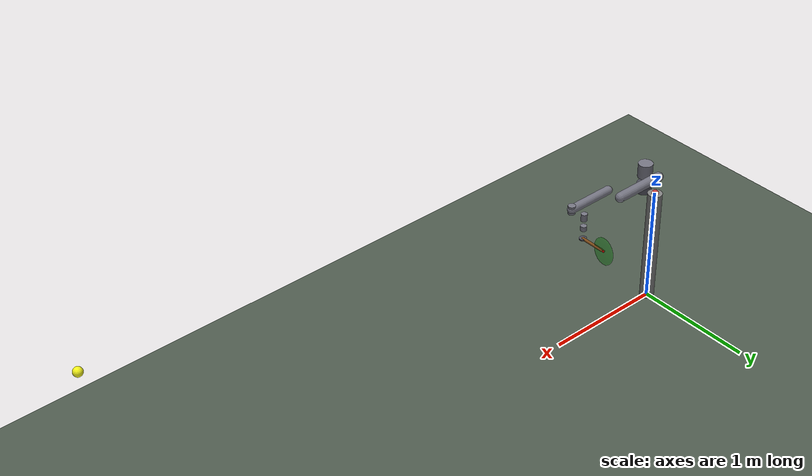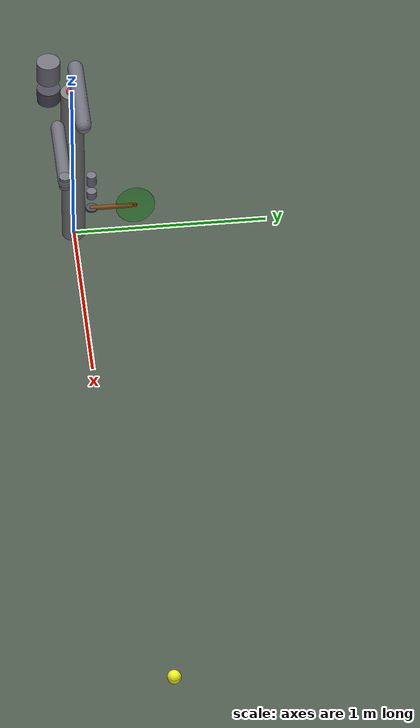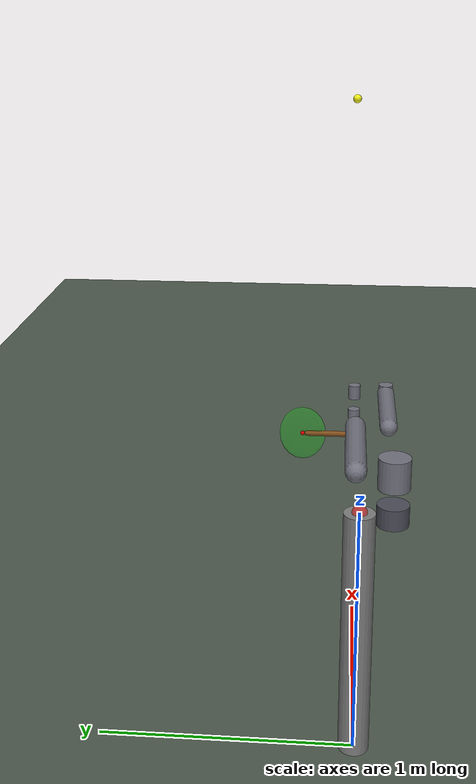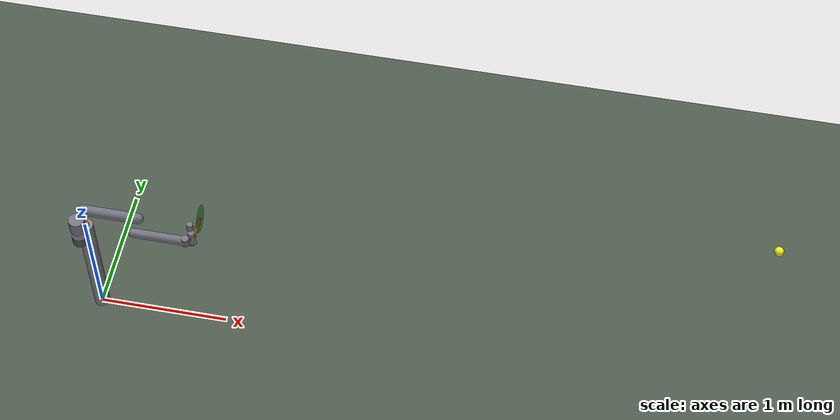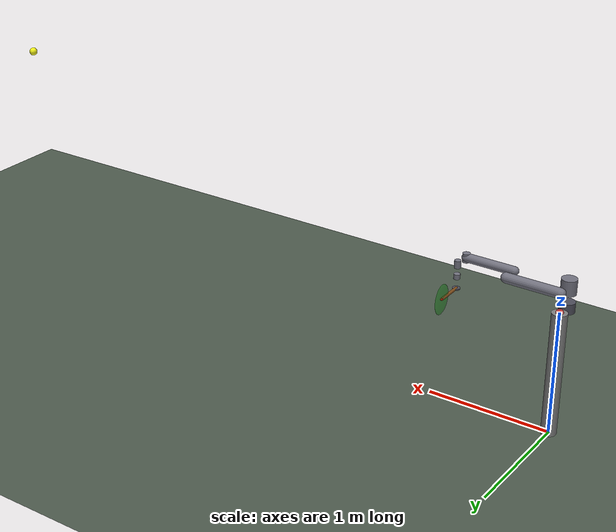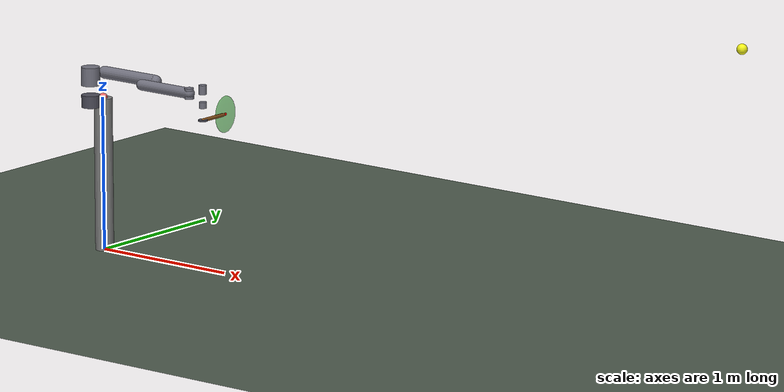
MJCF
<mujoco model="ur5e_tennis_robot">
  <!--
    UR5e 运动学参数来源：mujoco_menagerie (BSD-3-Clause)
    原始来源：Universal Robots 官方 URDF
    关节名与 body 名保持与 menagerie ur5e.xml 一致（带 _joint 后缀）
    执行器改为 motor 类型（力矩控制），适配 iLQR/MPC
  -->
  <option gravity="0 0 -9.81" timestep="0.005" integrator="implicitfast"/>

  <default>
    <default class="ur5e">
      <material specular="0.5" shininess="0.25"/>
    </default>
    <!-- 桩柱：仅视觉，不参与碰撞 -->
    <default class="pole">
      <geom contype="0" conaffinity="0"/>
    </default>
    <!-- 手臂连杆：不参与碰撞（自碰撞由关节限位和规划保证） -->
    <default class="arm">
      <geom contype="0" conaffinity="0"/>
    </default>
    <!-- 球拍：与球碰撞（contype=4, conaffinity=8） -->
    <default class="racket">
      <geom contype="4" conaffinity="8"/>
    </default>
    <!-- 球：与球拍碰撞（contype=8, conaffinity=4），弹跳由解析模型处理 -->
    <default class="ball">
      <geom contype="8" conaffinity="4"/>
    </default>
  </default>

  <worldbody>
    <light pos="0 0 3" dir="0 0 -1" diffuse="0.9 0.9 0.9"/>

    <!-- 地面 -->
    <geom type="plane" size="25 25 0.1" rgba="0.3 0.35 0.3 1"/>

    <!-- 安装桩（替代人形躯干），高 1.0m，半径 0.06m -->
    <body name="pole" pos="0 0 0.5">
      <geom type="cylinder" size="0.06 0.5" rgba="0.5 0.5 0.5 1" mass="30" class="pole"/>

      <!-- UR5e 底座 — 安装在桩顶右侧（-Y 方向）
           Y=-0.12：桩柱半径0.06 + 底座半径0.06 = 紧贴外表面
           Z=0.5：升到桩顶
      -->
      <body name="base_link" pos="0 -0.12 0.5">
        <inertial pos="0 0 0" mass="4.0" diaginertia="0.00443 0.00443 0.0072"/>
        <geom type="cylinder" size="0.06 0.04" rgba="0.3 0.3 0.35 1" class="arm"/>

        <!-- shoulder_pan_joint — 关节 0，绕 Z 旋转 -->
        <body name="shoulder_link" pos="0 0 0.163">
          <joint name="shoulder_pan_joint" type="hinge" axis="0 0 1" range="-360 360" damping="1.0" armature="0.1"/>
          <inertial pos="0 -0.00193 -0.02561" mass="3.761" diaginertia="0.01027 0.01027 0.00666"/>
          <geom type="cylinder" size="0.06 0.06" rgba="0.45 0.45 0.5 1" class="arm"/>

          <!-- shoulder_lift_joint — 关节 1，绕 Y 旋转 -->
          <body name="upper_arm_link" pos="0 0.138 0" quat="0.707107 0 0.707107 0">
            <joint name="shoulder_lift_joint" type="hinge" axis="0 1 0" range="-360 360" damping="1.0" armature="0.1"/>
            <inertial pos="-0.2125 0 0.11336" mass="8.058" diaginertia="0.13389 0.13389 0.01511"/>
            <geom type="capsule" fromto="0 0 0 0 0 0.425" size="0.04" rgba="0.45 0.45 0.5 1" class="arm"/>

            <!-- elbow_joint — 关节 2，绕 Y 旋转 -->
            <body name="forearm_link" pos="0 -0.131 0.425">
              <joint name="elbow_joint" type="hinge" axis="0 1 0" range="-180 180" damping="0.5" armature="0.1"/>
              <inertial pos="-0.2422 0 0.0265" mass="2.846" diaginertia="0.03118 0.03118 0.00410"/>
              <geom type="capsule" fromto="0 0 0 0 0 0.3922" size="0.035" rgba="0.45 0.45 0.5 1" class="arm"/>

              <!-- wrist_1_joint — 关节 3，绕 Y 旋转 -->
              <body name="wrist_1_link" pos="0 0 0.3922" quat="0.707107 0 0.707107 0">
                <joint name="wrist_1_joint" type="hinge" axis="0 1 0" range="-180 180" damping="0.2" armature="0.05"/>
                <inertial pos="0 -0.01634 -0.0018" mass="1.37" diaginertia="0.00256 0.00256 0.00219"/>
                <geom type="cylinder" size="0.03 0.035" rgba="0.45 0.45 0.5 1" class="arm"/>

                <!-- wrist_2_joint — 关节 4，绕 Z 旋转 -->
                <body name="wrist_2_link" pos="0 0.1333 0">
                  <joint name="wrist_2_joint" type="hinge" axis="0 0 1" range="-180 180" damping="0.1" armature="0.05"/>
                  <inertial pos="0 0.01634 -0.0018" mass="1.3" diaginertia="0.00256 0.00256 0.00219"/>
                  <geom type="cylinder" size="0.025 0.03" rgba="0.45 0.45 0.5 1" class="arm"/>

                  <!-- wrist_3_joint — 关节 5，绕 Y 旋转 -->
                  <body name="wrist_3_link" pos="0 0 0.0997">
                    <joint name="wrist_3_joint" type="hinge" axis="0 1 0" range="-180 180" damping="0.05" armature="0.01"/>
                    <inertial pos="0 0 -0.001159" mass="0.365" diaginertia="0.000132 9.909e-05 9.909e-05"/>
                    <geom type="cylinder" size="0.025 0.02" rgba="0.45 0.45 0.5 1" class="arm"/>

                    <!-- 法兰 — 标准距 wrist_3 为 0.0996m -->
                    <body name="flange" pos="0 0 0.0996">
                      <geom type="cylinder" size="0.03 0.005" rgba="0.3 0.3 0.35 1" class="arm"/>

                      <!-- 球拍手柄 — 沿法兰局部 Y 方向延伸 -->
                      <body name="racket_body" pos="0 0.10 0">
                        <inertial pos="0 0.10 0" mass="0.35" diaginertia="0.003 0.001 0.003"/>
                        <geom name="racket_handle" type="capsule" fromto="0 -0.10 0 0 0.10 0" size="0.012" rgba="0.5 0.3 0.1 1" class="racket"/>

                        <!-- 球拍面 — 拍面法线朝 -X（朝来球方向），与球可碰撞 -->
                        <geom name="racket_face" type="ellipsoid" pos="0 0.12 0" size="0.005 0.10 0.12" rgba="0.2 0.7 0.2 0.6" class="racket"/>
                        <site name="racket_center" pos="0 0.12 0" size="0.01" rgba="1 0 0 1"/>
                      </body>
                    </body>
                  </body>
                </body>
              </body>
            </body>
          </body>
        </body>
      </body>
    </body>

    <!-- 网球：弹跳由解析模型处理，球-球拍碰撞保留 -->
    <body name="ball" pos="5 0 2">
      <freejoint name="ball_freejoint"/>
      <geom type="sphere" size="0.033" rgba="0.95 0.95 0.1 1" mass="0.058" class="ball"/>
    </body>

    <!-- 击打目标点标记 -->
    <site name="hit_target" pos="0 0 1" size="0.03" rgba="1 0 0 0.5"/>
  </worldbody>

  <actuator>
    <motor name="torque_shoulder_pan"   joint="shoulder_pan_joint"   ctrlrange="-150 150"/>
    <motor name="torque_shoulder_lift"  joint="shoulder_lift_joint"  ctrlrange="-150 150"/>
    <motor name="torque_elbow"          joint="elbow_joint"          ctrlrange="-150 150"/>
    <motor name="torque_wrist_1"        joint="wrist_1_joint"        ctrlrange="-28 28"/>
    <motor name="torque_wrist_2"        joint="wrist_2_joint"        ctrlrange="-28 28"/>
    <motor name="torque_wrist_3"        joint="wrist_3_joint"        ctrlrange="-28 28"/>
  </actuator>
</mujoco>
